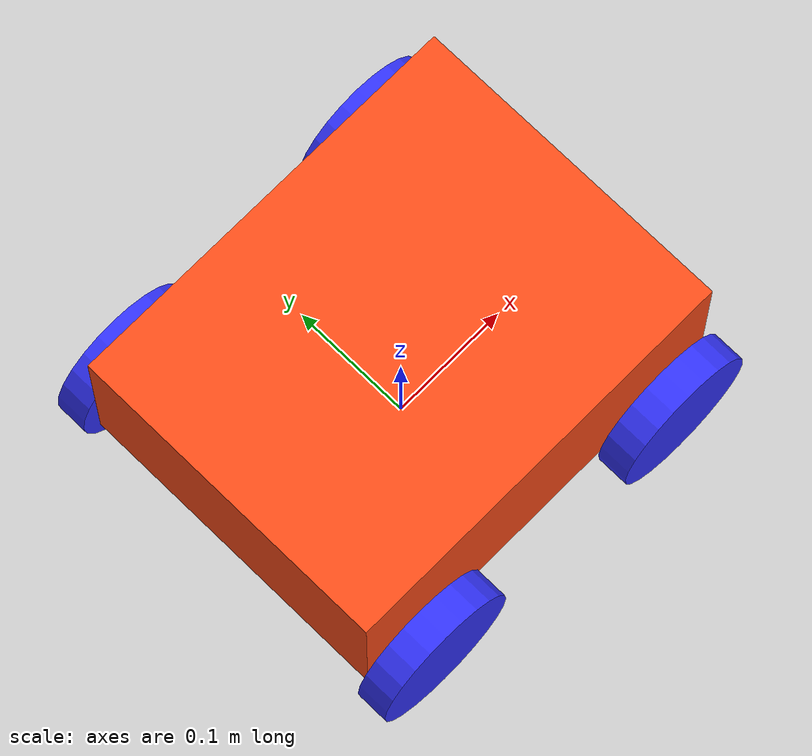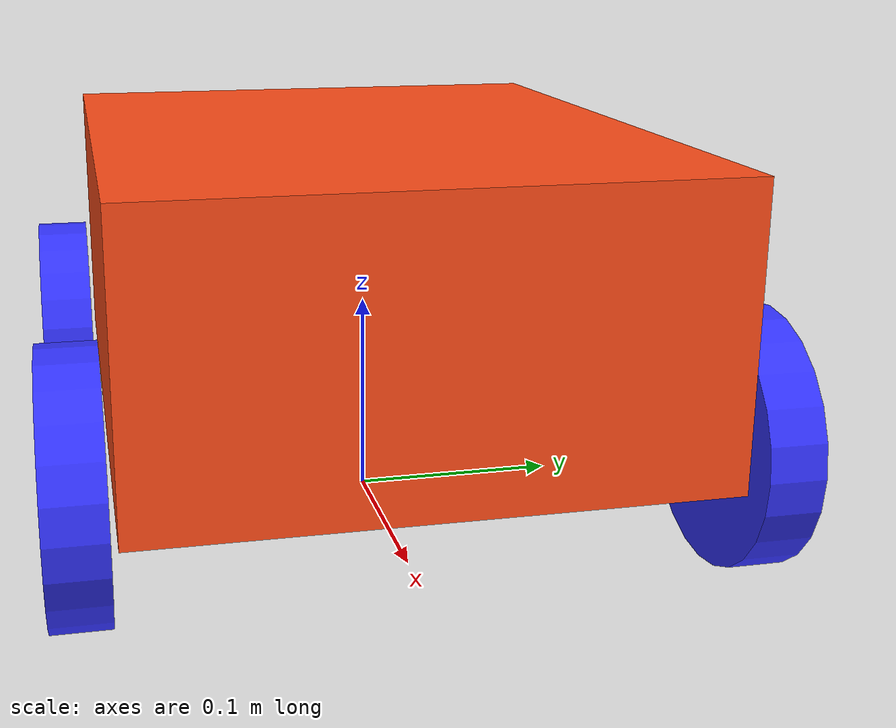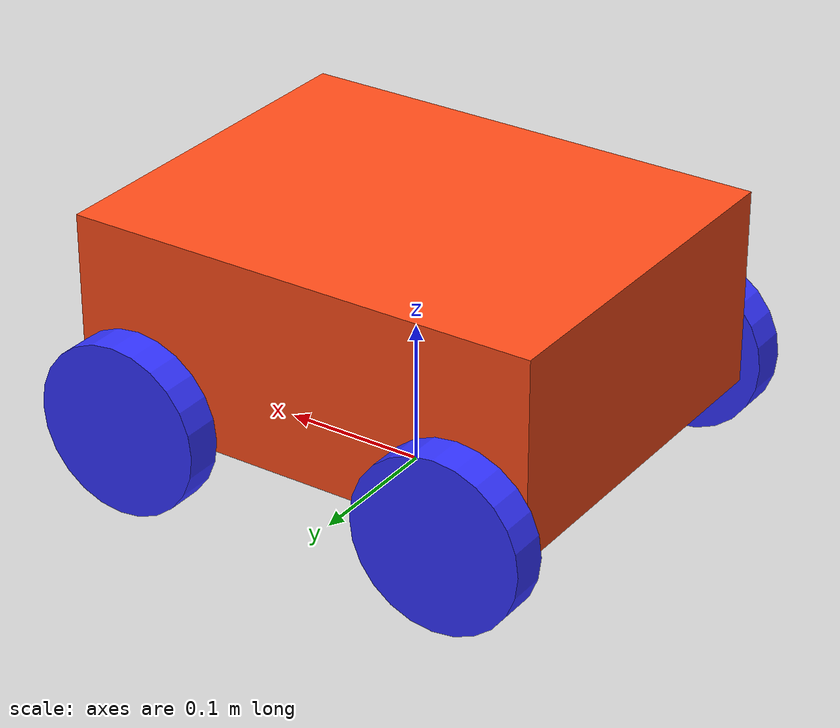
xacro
<?xml version="1.0"?>
<robot xmlns:xacro="http://www.ros.org/wiki/xacro">

    <xacro:include filename="inertial_macros.xacro" />

    <!-- CHASSIS  CONF-->
    <xacro:property name="chassis_length" value="0.335"/>
    <xacro:property name="chassis_width" value="0.265"/>
    <xacro:property name="chassis_height" value="0.138"/>
    <xacro:property name="chassis_mass" value="1.5"/>

    <!--  ROUES CONF -->
    <xacro:property name="wheel_radius" value="0.06"/>
    <xacro:property name="wheel_thickness" value="0.026"/>
    <xacro:property name="wheel_mass" value="0.09"/>
    <xacro:property name="wheel_offset_z" value="0.01"/>

    <!-- POSITIONS DES ROUES  -->
    <xacro:property name="wheel_offset_x_front" value="0.120"/>
    <xacro:property name="wheel_offset_x_rear" value="-0.120"/>
    <xacro:property name="wheel_offset_y" value="0.1485"/>

    <material name="white">
        <color rgba="1 1 1 1" />
    </material>

    <material name="orange">
        <color rgba="1 0.3 0.1 1"/>
    </material>

    <material name="blue">
        <color rgba="0.2 0.2 1 1"/>
    </material>

    <material name="black">
        <color rgba="0 0 0 1"/>
    </material>

    <material name="red">
        <color rgba="1 0 0 1"/>
    </material>

    <link name="base_footprint">
    </link>

    <joint name="base_footprint_joint" type="fixed">
        <parent link="base_footprint"/>
        <child link="base_link"/>
        <origin xyz="0 0 ${wheel_radius}" rpy="0 0 0"/>
    </joint>

    <link name="base_link">
    </link>

    <joint name="chassis_joint" type="fixed">
        <parent link="base_link"/>
        <child link="chassis"/>
        <origin xyz="0 0 ${-wheel_offset_z}"/>
    </joint>

    <link name="chassis">
        <visual>
            <origin xyz="0 0 ${chassis_height/2}"/>
            <geometry>
                <box size="${chassis_length} ${chassis_width} ${chassis_height}"/>
            </geometry>
            <material name="orange"/>
        </visual>
        <collision>
            <origin xyz="0 0 ${chassis_height/2}"/>
            <geometry>
                <box size="${chassis_length} ${chassis_width} ${chassis_height}"/>
            </geometry>
        </collision>
        <xacro:inertial_box mass="${chassis_mass}" x="${chassis_length}" y="${chassis_width}" z="${chassis_height}">
            <origin xyz="0 0 ${chassis_height/2}" rpy="0 0 0"/>
        </xacro:inertial_box>
    </link>

    <!-- MACRO POUR CRÉER UNE ROUE -->
    <xacro:macro name="wheel" params="prefix x_pos y_pos">
        <joint name="${prefix}_wheel_joint" type="continuous">
            <parent link="base_link"/>
            <child link="${prefix}_wheel"/>
            <origin xyz="${x_pos} ${y_pos} 0" rpy="${-pi/2} 0 0" />
            <axis xyz="0 0 1"/>
        </joint>

        <link name="${prefix}_wheel">
            <visual>
                <geometry>
                    <cylinder radius="${wheel_radius}" length="${wheel_thickness}"/>
                </geometry>
                <material name="blue"/>
            </visual>
            <collision>
                <geometry>
                    <sphere radius="${wheel_radius}"/>
                </geometry>
            </collision>
            <xacro:inertial_cylinder mass="${wheel_mass}" length="${wheel_thickness}" radius="${wheel_radius}">
                <origin xyz="0 0 0" rpy="0 0 0"/>
            </xacro:inertial_cylinder>
        </link>
    </xacro:macro>

    <!-- Roues avant -->
    <xacro:wheel prefix="front_left" x_pos="${wheel_offset_x_front}" y_pos="${wheel_offset_y}"/>
    <xacro:wheel prefix="front_right" x_pos="${wheel_offset_x_front}" y_pos="${-wheel_offset_y}"/>

    <!-- Roues arrière -->
    <xacro:wheel prefix="rear_left" x_pos="${wheel_offset_x_rear}" y_pos="${wheel_offset_y}"/>
    <xacro:wheel prefix="rear_right" x_pos="${wheel_offset_x_rear}" y_pos="${-wheel_offset_y}"/>

</robot>
